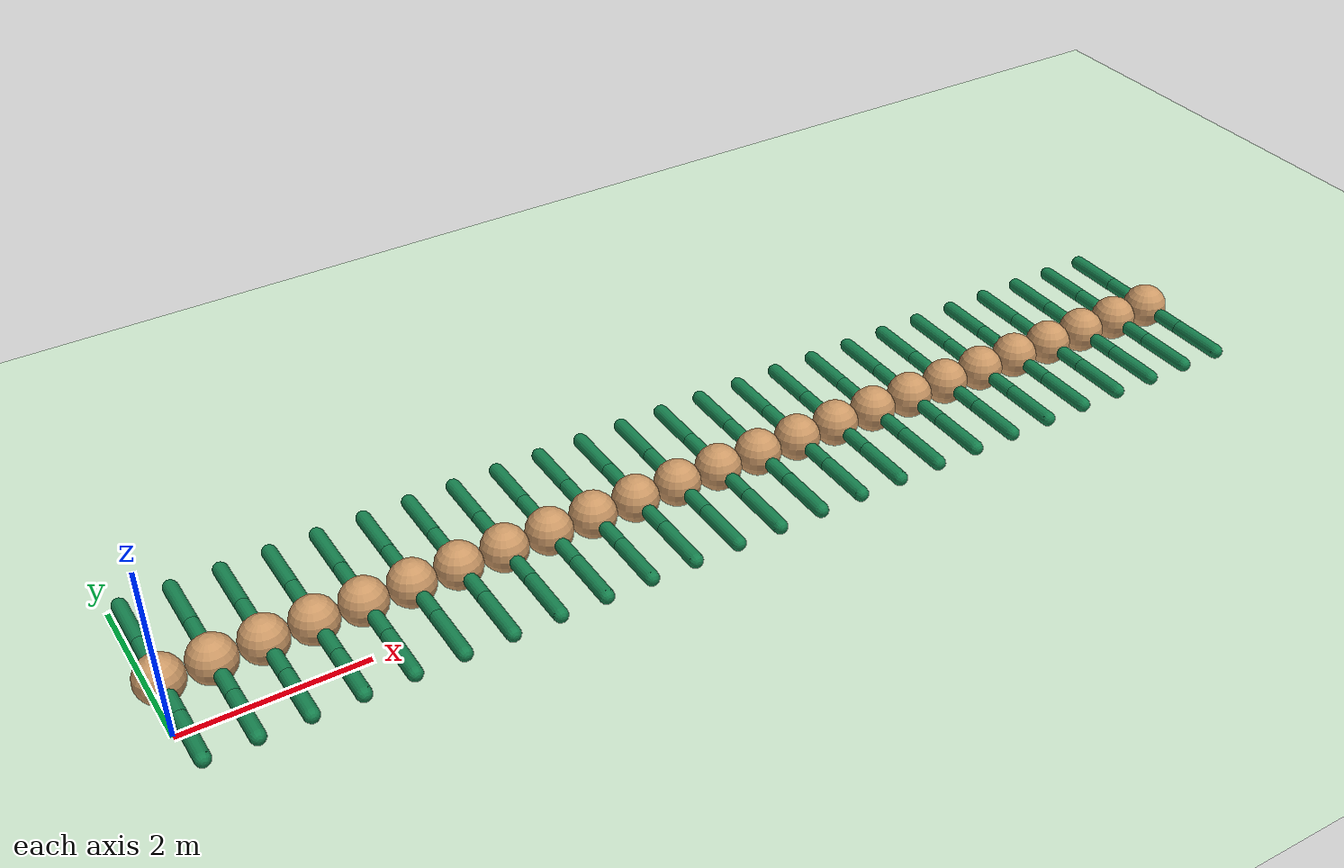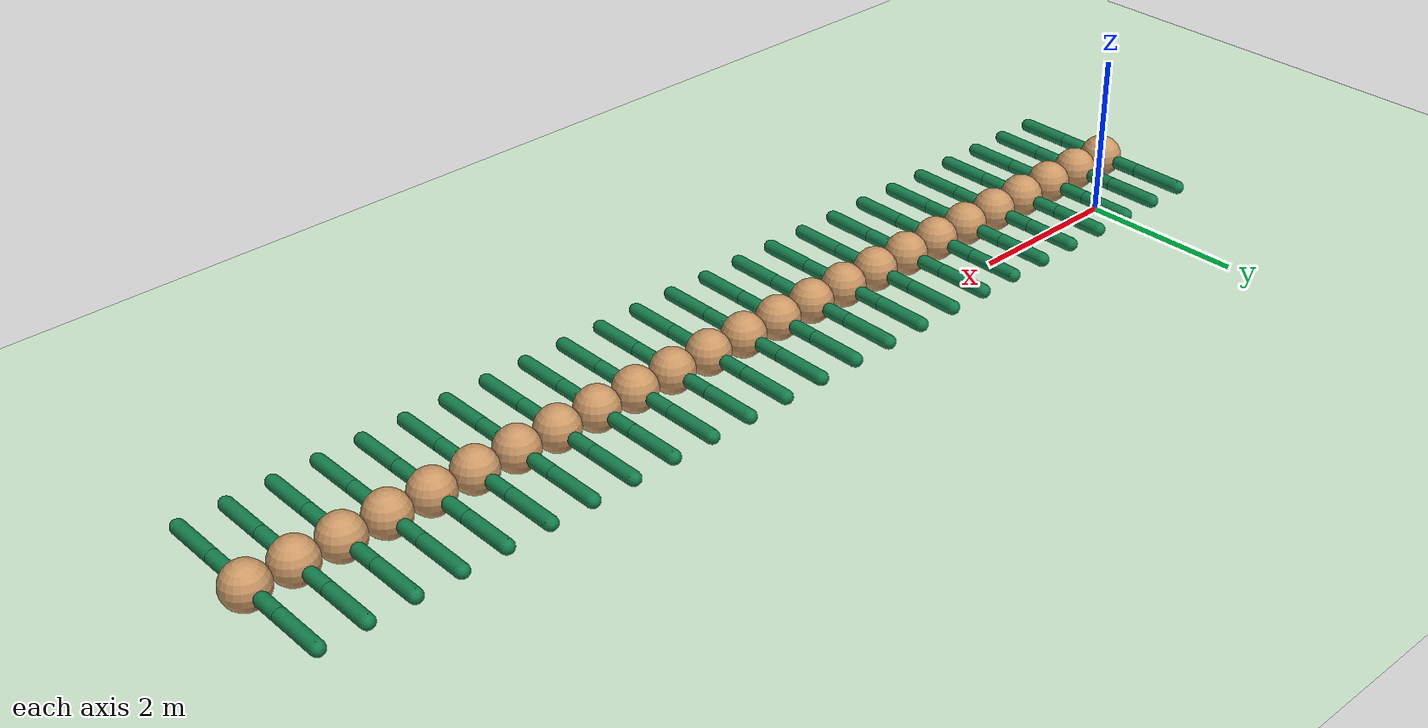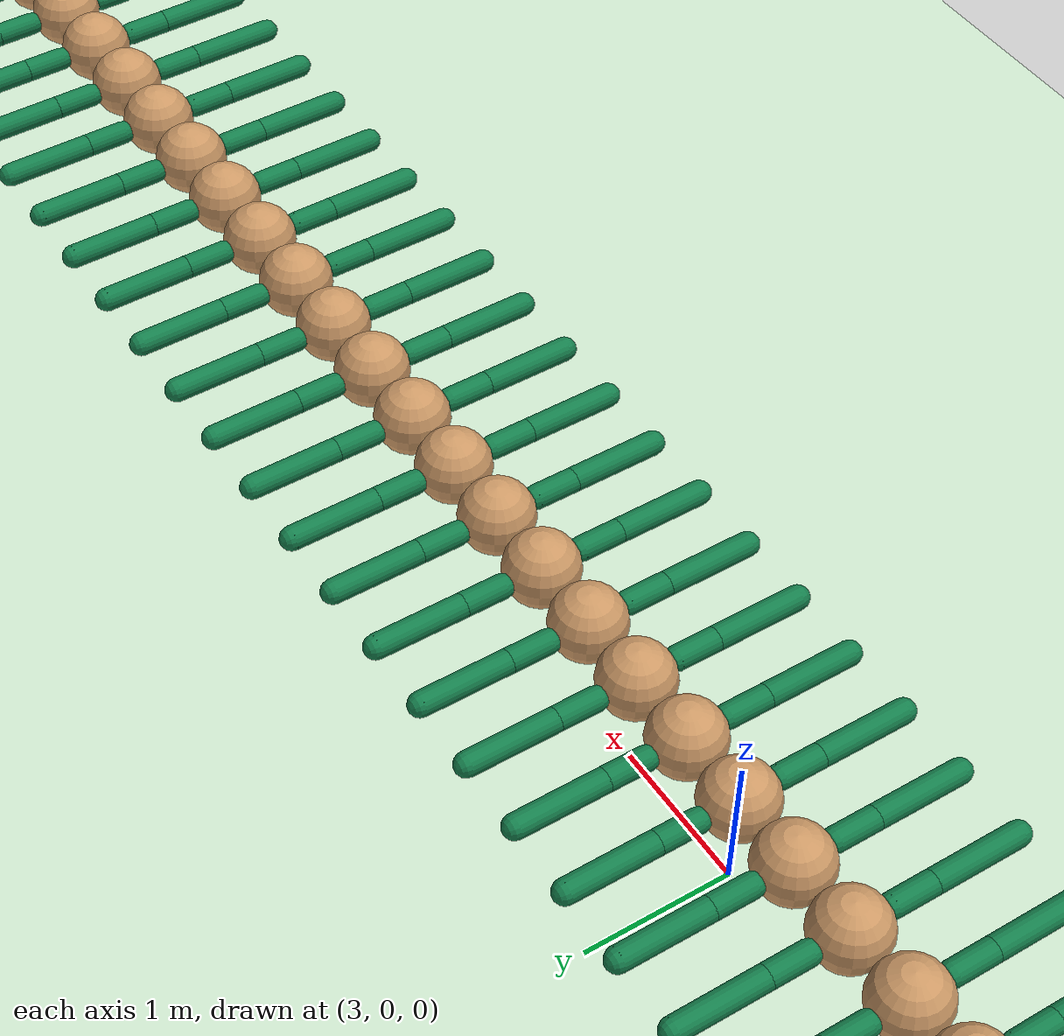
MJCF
<mujoco model="centipede">
  <compiler angle="degree" coordinate="local" inertiafromgeom="true"/>

  <option integrator="RK4" timestep="0.01"/>

  <default>
    <joint armature="1" damping="1" limited="true"/>
    <geom conaffinity="0" condim="3" density="25.0" friction="1.5 0.1 0.1" margin="0.01" rgba="0.8 0.6 0.4 1"/>
  </default>

  <asset>
    <texture builtin="gradient" height="100" rgb1="1 1 1" rgb2="0 0 0" type="skybox" width="100"/>
    <texture builtin="flat" height="1278" mark="cross" markrgb="1 1 1" name="texgeom" random="0.01" rgb1="0.8 0.6 0.4" rgb2="0.8 0.6 0.4" type="cube" width="127"/>
    <texture builtin="checker" height="100" name="texplane" rgb1="0 0 0" rgb2="0.8 0.8 0.8" type="2d" width="100"/>
    <material name="MatPlane" reflectance="0.5" shininess="1" specular="1" texrepeat="60 60" texture="texplane"/>
    <material name="geom" texture="texgeom" texuniform="true"/>
  </asset>

  <worldbody>
    <light cutoff="100" diffuse="1 1 1" dir="-0 0 -1.3" directional="true" exponent="1" pos="0 0 1.3" specular=".1 .1 .1"/>
    <geom conaffinity="1" condim="3" material="MatPlane" name="floor" pos="0 0 0" rgba="0.8 0.9 0.8 1" size="40 40 40" type="plane"/>
    <body name="torso_0" pos="0 0 0.75">
      <geom name="torsoGeom_0" pos="0 0 0" size="0.25" type="sphere" density="100"/>
      <joint armature="0" damping="0" limited="false" margin="0.01" name="root" pos="0 0 0" type="free"/>

      <body name="legbody_0" pos="0.0 -0.28 0">
        <joint axis="0 0 1" name="lefthip_0" pos="0.0 0.0 0.0" range="-40 40" type="hinge"/>
        <geom fromto="0.0 0.0 0.0 0.0 -0.28 0.0" name="legGeom_0" size="0.08" type="capsule" rgba=".08 .5 .3 1"/>
        <body pos="0 -0.28 0" name="frontFoot_0">
          <joint axis="1 0 0" name="ankle_0" pos="0.0 0.0 0.0" range="30 100" type="hinge"/>
          <geom fromto="0.0 0.0 0.0 0 -0.6 0.0" name="ankleGeom_0" size="0.08" type="capsule" rgba=".08 .5 .3 1"/>
        </body>
      </body>

      <body name="legbody_1" pos="0.0 0.28 0">
        <joint axis="0 0 1" name="righthip_1" pos="0.0 0.0 0.0" range="-40 40" type="hinge"/>
        <geom fromto="0.0 0.0 0.0 0.0 0.28 0.0" name="legGeom_1" size="0.08" type="capsule" rgba=".08 .5 .3 1"/>
        <body pos="0 0.28 0" name="frontFoot_1">
          <joint axis="-1 0 0" name="ankle_1" pos="0.0 0.0 0.0" range="30 100" type="hinge"/>
          <geom fromto="0.0 0.0 0.0 0 0.6 0.0" name="ankleGeom_1" size="0.08" type="capsule" rgba=".08 .5 .3 1"/>
        </body>
      </body>

      <body name="torso_1" pos="0.50 0 0">
        <geom name="torsoGeom_1" pos="0 0 0" size="0.25" type="sphere" density="100"/>
        <joint axis="0 0 1" name="body_1" pos="-0.25 0.0 0.0" range="-20 20" type="hinge"/>
        <joint axis="0 1 0" name="bodyupdown_1" pos="-0.25 0.0 0.0" range="-10 30" type="hinge"/>

        <body name="legbody_2" pos="0.0 -0.28 0">
          <joint axis="0 0 1" name="lefthip_2" pos="0.0 0.0 0.0" range="-40 40" type="hinge"/>
          <geom fromto="0.0 0.0 0.0 0.0 -0.28 0.0" name="legGeom_2" size="0.08" type="capsule" rgba=".08 .5 .3 1"/>
          <body pos="0 -0.28 0" name="frontFoot_2">
            <joint axis="1 0 0" name="ankle_2" pos="0.0 0.0 0.0" range="30 100" type="hinge"/>
            <geom fromto="0.0 0.0 0.0 0 -0.6 0.0" name="ankleGeom_2" size="0.08" type="capsule" rgba=".08 .5 .3 1"/>
          </body>
        </body>

        <body name="legbody_3" pos="0.0 0.28 0">
          <joint axis="0 0 1" name="righthip_3" pos="0.0 0.0 0.0" range="-40 40" type="hinge"/>
          <geom fromto="0.0 0.0 0.0 0.0 0.28 0.0" name="legGeom_3" size="0.08" type="capsule" rgba=".08 .5 .3 1"/>
          <body pos="0 0.28 0" name="frontFoot_3">
            <joint axis="-1 0 0" name="ankle_3" pos="0.0 0.0 0.0" range="30 100" type="hinge"/>
            <geom fromto="0.0 0.0 0.0 0 0.6 0.0" name="ankleGeom_3" size="0.08" type="capsule" rgba=".08 .5 .3 1"/>
          </body>
        </body>

        <body name="torso_2" pos="0.50 0 0">
          <geom name="torsoGeom_2" pos="0 0 0" size="0.25" type="sphere" density="100"/>
          <joint axis="0 0 1" name="body_2" pos="-0.25 0.0 0.0" range="-20 20" type="hinge"/>
          <joint axis="0 1 0" name="bodyupdown_2" pos="-0.25 0.0 0.0" range="-10 30" type="hinge"/>

          <body name="legbody_4" pos="0.0 -0.28 0">
            <joint axis="0 0 1" name="lefthip_4" pos="0.0 0.0 0.0" range="-40 40" type="hinge"/>
            <geom fromto="0.0 0.0 0.0 0.0 -0.28 0.0" name="legGeom_4" size="0.08" type="capsule" rgba=".08 .5 .3 1"/>
            <body pos="0 -0.28 0" name="frontFoot_4">
              <joint axis="1 0 0" name="ankle_4" pos="0.0 0.0 0.0" range="30 100" type="hinge"/>
              <geom fromto="0.0 0.0 0.0 0 -0.6 0.0" name="ankleGeom_4" size="0.08" type="capsule" rgba=".08 .5 .3 1"/>
            </body>
          </body>

          <body name="legbody_5" pos="0.0 0.28 0">
            <joint axis="0 0 1" name="righthip_5" pos="0.0 0.0 0.0" range="-40 40" type="hinge"/>
            <geom fromto="0.0 0.0 0.0 0.0 0.28 0.0" name="legGeom_5" size="0.08" type="capsule" rgba=".08 .5 .3 1"/>
            <body pos="0 0.28 0" name="frontFoot_5">
              <joint axis="-1 0 0" name="ankle_5" pos="0.0 0.0 0.0" range="30 100" type="hinge"/>
              <geom fromto="0.0 0.0 0.0 0 0.6 0.0" name="ankleGeom_5" size="0.08" type="capsule" rgba=".08 .5 .3 1"/>
            </body>
          </body>

          <body name="torso_3" pos="0.50 0 0">
            <geom name="torsoGeom_3" pos="0 0 0" size="0.25" type="sphere" density="100"/>
            <joint axis="0 0 1" name="body_3" pos="-0.25 0.0 0.0" range="-20 20" type="hinge"/>
            <joint axis="0 1 0" name="bodyupdown_3" pos="-0.25 0.0 0.0" range="-10 30" type="hinge"/>

            <body name="legbody_6" pos="0.0 -0.28 0">
              <joint axis="0 0 1" name="lefthip_6" pos="0.0 0.0 0.0" range="-40 40" type="hinge"/>
              <geom fromto="0.0 0.0 0.0 0.0 -0.28 0.0" name="legGeom_6" size="0.08" type="capsule" rgba=".08 .5 .3 1"/>
              <body pos="0 -0.28 0" name="frontFoot_6">
                <joint axis="1 0 0" name="ankle_6" pos="0.0 0.0 0.0" range="30 100" type="hinge"/>
                <geom fromto="0.0 0.0 0.0 0 -0.6 0.0" name="ankleGeom_6" size="0.08" type="capsule" rgba=".08 .5 .3 1"/>
              </body>
            </body>

            <body name="legbody_7" pos="0.0 0.28 0">
              <joint axis="0 0 1" name="righthip_7" pos="0.0 0.0 0.0" range="-40 40" type="hinge"/>
              <geom fromto="0.0 0.0 0.0 0.0 0.28 0.0" name="legGeom_7" size="0.08" type="capsule" rgba=".08 .5 .3 1"/>
              <body pos="0 0.28 0" name="frontFoot_7">
                <joint axis="-1 0 0" name="ankle_7" pos="0.0 0.0 0.0" range="30 100" type="hinge"/>
                <geom fromto="0.0 0.0 0.0 0 0.6 0.0" name="ankleGeom_7" size="0.08" type="capsule" rgba=".08 .5 .3 1"/>
              </body>
            </body>

            <body name="torso_4" pos="0.50 0 0">
              <geom name="torsoGeom_4" pos="0 0 0" size="0.25" type="sphere" density="100"/>
              <joint axis="0 0 1" name="body_4" pos="-0.25 0.0 0.0" range="-20 20" type="hinge"/>
              <joint axis="0 1 0" name="bodyupdown_4" pos="-0.25 0.0 0.0" range="-10 30" type="hinge"/>

              <body name="legbody_8" pos="0.0 -0.28 0">
                <joint axis="0 0 1" name="lefthip_8" pos="0.0 0.0 0.0" range="-40 40" type="hinge"/>
                <geom fromto="0.0 0.0 0.0 0.0 -0.28 0.0" name="legGeom_8" size="0.08" type="capsule" rgba=".08 .5 .3 1"/>
                <body pos="0 -0.28 0" name="frontFoot_8">
                  <joint axis="1 0 0" name="ankle_8" pos="0.0 0.0 0.0" range="30 100" type="hinge"/>
                  <geom fromto="0.0 0.0 0.0 0 -0.6 0.0" name="ankleGeom_8" size="0.08" type="capsule" rgba=".08 .5 .3 1"/>
                </body>
              </body>

              <body name="legbody_9" pos="0.0 0.28 0">
                <joint axis="0 0 1" name="righthip_9" pos="0.0 0.0 0.0" range="-40 40" type="hinge"/>
                <geom fromto="0.0 0.0 0.0 0.0 0.28 0.0" name="legGeom_9" size="0.08" type="capsule" rgba=".08 .5 .3 1"/>
                <body pos="0 0.28 0" name="frontFoot_9">
                  <joint axis="-1 0 0" name="ankle_9" pos="0.0 0.0 0.0" range="30 100" type="hinge"/>
                  <geom fromto="0.0 0.0 0.0 0 0.6 0.0" name="ankleGeom_9" size="0.08" type="capsule" rgba=".08 .5 .3 1"/>
                </body>
              </body>

              <body name="torso_5" pos="0.50 0 0">
                <geom name="torsoGeom_5" pos="0 0 0" size="0.25" type="sphere" density="100"/>
                <joint axis="0 0 1" name="body_5" pos="-0.25 0.0 0.0" range="-20 20" type="hinge"/>
                <joint axis="0 1 0" name="bodyupdown_5" pos="-0.25 0.0 0.0" range="-10 30" type="hinge"/>

                <body name="legbody_10" pos="0.0 -0.28 0">
                  <joint axis="0 0 1" name="lefthip_10" pos="0.0 0.0 0.0" range="-40 40" type="hinge"/>
                  <geom fromto="0.0 0.0 0.0 0.0 -0.28 0.0" name="legGeom_10" size="0.08" type="capsule" rgba=".08 .5 .3 1"/>
                  <body pos="0 -0.28 0" name="frontFoot_10">
                    <joint axis="1 0 0" name="ankle_10" pos="0.0 0.0 0.0" range="30 100" type="hinge"/>
                    <geom fromto="0.0 0.0 0.0 0 -0.6 0.0" name="ankleGeom_10" size="0.08" type="capsule" rgba=".08 .5 .3 1"/>
                  </body>
                </body>

                <body name="legbody_11" pos="0.0 0.28 0">
                  <joint axis="0 0 1" name="righthip_11" pos="0.0 0.0 0.0" range="-40 40" type="hinge"/>
                  <geom fromto="0.0 0.0 0.0 0.0 0.28 0.0" name="legGeom_11" size="0.08" type="capsule" rgba=".08 .5 .3 1"/>
                  <body pos="0 0.28 0" name="frontFoot_11">
                    <joint axis="-1 0 0" name="ankle_11" pos="0.0 0.0 0.0" range="30 100" type="hinge"/>
                    <geom fromto="0.0 0.0 0.0 0 0.6 0.0" name="ankleGeom_11" size="0.08" type="capsule" rgba=".08 .5 .3 1"/>
                  </body>
                </body>

                <body name="torso_6" pos="0.50 0 0">
                  <geom name="torsoGeom_6" pos="0 0 0" size="0.25" type="sphere" density="100"/>
                  <joint axis="0 0 1" name="body_6" pos="-0.25 0.0 0.0" range="-20 20" type="hinge"/>
                  <joint axis="0 1 0" name="bodyupdown_6" pos="-0.25 0.0 0.0" range="-10 30" type="hinge"/>

                  <body name="legbody_12" pos="0.0 -0.28 0">
                    <joint axis="0 0 1" name="lefthip_12" pos="0.0 0.0 0.0" range="-40 40" type="hinge"/>
                    <geom fromto="0.0 0.0 0.0 0.0 -0.28 0.0" name="legGeom_12" size="0.08" type="capsule" rgba=".08 .5 .3 1"/>
                    <body pos="0 -0.28 0" name="frontFoot_12">
                      <joint axis="1 0 0" name="ankle_12" pos="0.0 0.0 0.0" range="30 100" type="hinge"/>
                      <geom fromto="0.0 0.0 0.0 0 -0.6 0.0" name="ankleGeom_12" size="0.08" type="capsule" rgba=".08 .5 .3 1"/>
                    </body>
                  </body>

                  <body name="legbody_13" pos="0.0 0.28 0">
                    <joint axis="0 0 1" name="righthip_13" pos="0.0 0.0 0.0" range="-40 40" type="hinge"/>
                    <geom fromto="0.0 0.0 0.0 0.0 0.28 0.0" name="legGeom_13" size="0.08" type="capsule" rgba=".08 .5 .3 1"/>
                    <body pos="0 0.28 0" name="frontFoot_13">
                      <joint axis="-1 0 0" name="ankle_13" pos="0.0 0.0 0.0" range="30 100" type="hinge"/>
                      <geom fromto="0.0 0.0 0.0 0 0.6 0.0" name="ankleGeom_13" size="0.08" type="capsule" rgba=".08 .5 .3 1"/>
                    </body>
                  </body>

                  <body name="torso_7" pos="0.50 0 0">
                    <geom name="torsoGeom_7" pos="0 0 0" size="0.25" type="sphere" density="100"/>
                    <joint axis="0 0 1" name="body_7" pos="-0.25 0.0 0.0" range="-20 20" type="hinge"/>
                    <joint axis="0 1 0" name="bodyupdown_7" pos="-0.25 0.0 0.0" range="-10 30" type="hinge"/>

                    <body name="legbody_14" pos="0.0 -0.28 0">
                      <joint axis="0 0 1" name="lefthip_14" pos="0.0 0.0 0.0" range="-40 40" type="hinge"/>
                      <geom fromto="0.0 0.0 0.0 0.0 -0.28 0.0" name="legGeom_14" size="0.08" type="capsule" rgba=".08 .5 .3 1"/>
                      <body pos="0 -0.28 0" name="frontFoot_14">
                        <joint axis="1 0 0" name="ankle_14" pos="0.0 0.0 0.0" range="30 100" type="hinge"/>
                        <geom fromto="0.0 0.0 0.0 0 -0.6 0.0" name="ankleGeom_14" size="0.08" type="capsule" rgba=".08 .5 .3 1"/>
                      </body>
                    </body>

                    <body name="legbody_15" pos="0.0 0.28 0">
                      <joint axis="0 0 1" name="righthip_15" pos="0.0 0.0 0.0" range="-40 40" type="hinge"/>
                      <geom fromto="0.0 0.0 0.0 0.0 0.28 0.0" name="legGeom_15" size="0.08" type="capsule" rgba=".08 .5 .3 1"/>
                      <body pos="0 0.28 0" name="frontFoot_15">
                        <joint axis="-1 0 0" name="ankle_15" pos="0.0 0.0 0.0" range="30 100" type="hinge"/>
                        <geom fromto="0.0 0.0 0.0 0 0.6 0.0" name="ankleGeom_15" size="0.08" type="capsule" rgba=".08 .5 .3 1"/>
                      </body>
                    </body>

                    <body name="torso_8" pos="0.50 0 0">
                      <geom name="torsoGeom_8" pos="0 0 0" size="0.25" type="sphere" density="100"/>
                      <joint axis="0 0 1" name="body_8" pos="-0.25 0.0 0.0" range="-20 20" type="hinge"/>
                      <joint axis="0 1 0" name="bodyupdown_8" pos="-0.25 0.0 0.0" range="-10 30" type="hinge"/>

                      <body name="legbody_16" pos="0.0 -0.28 0">
                        <joint axis="0 0 1" name="lefthip_16" pos="0.0 0.0 0.0" range="-40 40" type="hinge"/>
                        <geom fromto="0.0 0.0 0.0 0.0 -0.28 0.0" name="legGeom_16" size="0.08" type="capsule" rgba=".08 .5 .3 1"/>
                        <body pos="0 -0.28 0" name="frontFoot_16">
                          <joint axis="1 0 0" name="ankle_16" pos="0.0 0.0 0.0" range="30 100" type="hinge"/>
                          <geom fromto="0.0 0.0 0.0 0 -0.6 0.0" name="ankleGeom_16" size="0.08" type="capsule" rgba=".08 .5 .3 1"/>
                        </body>
                      </body>

                      <body name="legbody_17" pos="0.0 0.28 0">
                        <joint axis="0 0 1" name="righthip_17" pos="0.0 0.0 0.0" range="-40 40" type="hinge"/>
                        <geom fromto="0.0 0.0 0.0 0.0 0.28 0.0" name="legGeom_17" size="0.08" type="capsule" rgba=".08 .5 .3 1"/>
                        <body pos="0 0.28 0" name="frontFoot_17">
                          <joint axis="-1 0 0" name="ankle_17" pos="0.0 0.0 0.0" range="30 100" type="hinge"/>
                          <geom fromto="0.0 0.0 0.0 0 0.6 0.0" name="ankleGeom_17" size="0.08" type="capsule" rgba=".08 .5 .3 1"/>
                        </body>
                      </body>

                      <body name="torso_9" pos="0.50 0 0">
                        <geom name="torsoGeom_9" pos="0 0 0" size="0.25" type="sphere" density="100"/>
                        <joint axis="0 0 1" name="body_9" pos="-0.25 0.0 0.0" range="-20 20" type="hinge"/>
                        <joint axis="0 1 0" name="bodyupdown_9" pos="-0.25 0.0 0.0" range="-10 30" type="hinge"/>

                        <body name="legbody_18" pos="0.0 -0.28 0">
                          <joint axis="0 0 1" name="lefthip_18" pos="0.0 0.0 0.0" range="-40 40" type="hinge"/>
                          <geom fromto="0.0 0.0 0.0 0.0 -0.28 0.0" name="legGeom_18" size="0.08" type="capsule" rgba=".08 .5 .3 1"/>
                          <body pos="0 -0.28 0" name="frontFoot_18">
                            <joint axis="1 0 0" name="ankle_18" pos="0.0 0.0 0.0" range="30 100" type="hinge"/>
                            <geom fromto="0.0 0.0 0.0 0 -0.6 0.0" name="ankleGeom_18" size="0.08" type="capsule" rgba=".08 .5 .3 1"/>
                          </body>
                        </body>

                        <body name="legbody_19" pos="0.0 0.28 0">
                          <joint axis="0 0 1" name="righthip_19" pos="0.0 0.0 0.0" range="-40 40" type="hinge"/>
                          <geom fromto="0.0 0.0 0.0 0.0 0.28 0.0" name="legGeom_19" size="0.08" type="capsule" rgba=".08 .5 .3 1"/>
                          <body pos="0 0.28 0" name="frontFoot_19">
                            <joint axis="-1 0 0" name="ankle_19" pos="0.0 0.0 0.0" range="30 100" type="hinge"/>
                            <geom fromto="0.0 0.0 0.0 0 0.6 0.0" name="ankleGeom_19" size="0.08" type="capsule" rgba=".08 .5 .3 1"/>
                          </body>
                        </body>

                        <body name="torso_10" pos="0.50 0 0">
                          <geom name="torsoGeom_10" pos="0 0 0" size="0.25" type="sphere" density="100"/>
                          <joint axis="0 0 1" name="body_10" pos="-0.25 0.0 0.0" range="-20 20" type="hinge"/>
                          <joint axis="0 1 0" name="bodyupdown_10" pos="-0.25 0.0 0.0" range="-10 30" type="hinge"/>

                          <body name="legbody_20" pos="0.0 -0.28 0">
                            <joint axis="0 0 1" name="lefthip_20" pos="0.0 0.0 0.0" range="-40 40" type="hinge"/>
                            <geom fromto="0.0 0.0 0.0 0.0 -0.28 0.0" name="legGeom_20" size="0.08" type="capsule" rgba=".08 .5 .3 1"/>
                            <body pos="0 -0.28 0" name="frontFoot_20">
                              <joint axis="1 0 0" name="ankle_20" pos="0.0 0.0 0.0" range="30 100" type="hinge"/>
                              <geom fromto="0.0 0.0 0.0 0 -0.6 0.0" name="ankleGeom_20" size="0.08" type="capsule" rgba=".08 .5 .3 1"/>
                            </body>
                          </body>

                          <body name="legbody_21" pos="0.0 0.28 0">
                            <joint axis="0 0 1" name="righthip_21" pos="0.0 0.0 0.0" range="-40 40" type="hinge"/>
                            <geom fromto="0.0 0.0 0.0 0.0 0.28 0.0" name="legGeom_21" size="0.08" type="capsule" rgba=".08 .5 .3 1"/>
                            <body pos="0 0.28 0" name="frontFoot_21">
                              <joint axis="-1 0 0" name="ankle_21" pos="0.0 0.0 0.0" range="30 100" type="hinge"/>
                              <geom fromto="0.0 0.0 0.0 0 0.6 0.0" name="ankleGeom_21" size="0.08" type="capsule" rgba=".08 .5 .3 1"/>
                            </body>
                          </body>

                          <body name="torso_11" pos="0.50 0 0">
                            <geom name="torsoGeom_11" pos="0 0 0" size="0.25" type="sphere" density="100"/>
                            <joint axis="0 0 1" name="body_11" pos="-0.25 0.0 0.0" range="-20 20" type="hinge"/>
                            <joint axis="0 1 0" name="bodyupdown_11" pos="-0.25 0.0 0.0" range="-10 30" type="hinge"/>

                            <body name="legbody_22" pos="0.0 -0.28 0">
                              <joint axis="0 0 1" name="lefthip_22" pos="0.0 0.0 0.0" range="-40 40" type="hinge"/>
                              <geom fromto="0.0 0.0 0.0 0.0 -0.28 0.0" name="legGeom_22" size="0.08" type="capsule" rgba=".08 .5 .3 1"/>
                              <body pos="0 -0.28 0" name="frontFoot_22">
                                <joint axis="1 0 0" name="ankle_22" pos="0.0 0.0 0.0" range="30 100" type="hinge"/>
                                <geom fromto="0.0 0.0 0.0 0 -0.6 0.0" name="ankleGeom_22" size="0.08" type="capsule" rgba=".08 .5 .3 1"/>
                              </body>
                            </body>

                            <body name="legbody_23" pos="0.0 0.28 0">
                              <joint axis="0 0 1" name="righthip_23" pos="0.0 0.0 0.0" range="-40 40" type="hinge"/>
                              <geom fromto="0.0 0.0 0.0 0.0 0.28 0.0" name="legGeom_23" size="0.08" type="capsule" rgba=".08 .5 .3 1"/>
                              <body pos="0 0.28 0" name="frontFoot_23">
                                <joint axis="-1 0 0" name="ankle_23" pos="0.0 0.0 0.0" range="30 100" type="hinge"/>
                                <geom fromto="0.0 0.0 0.0 0 0.6 0.0" name="ankleGeom_23" size="0.08" type="capsule" rgba=".08 .5 .3 1"/>
                              </body>
                            </body>

                            <body name="torso_12" pos="0.50 0 0">
                              <geom name="torsoGeom_12" pos="0 0 0" size="0.25" type="sphere" density="100"/>
                              <joint axis="0 0 1" name="body_12" pos="-0.25 0.0 0.0" range="-20 20" type="hinge"/>
                              <joint axis="0 1 0" name="bodyupdown_12" pos="-0.25 0.0 0.0" range="-10 30" type="hinge"/>

                              <body name="legbody_24" pos="0.0 -0.28 0">
                                <joint axis="0 0 1" name="lefthip_24" pos="0.0 0.0 0.0" range="-40 40" type="hinge"/>
                                <geom fromto="0.0 0.0 0.0 0.0 -0.28 0.0" name="legGeom_24" size="0.08" type="capsule" rgba=".08 .5 .3 1"/>
                                <body pos="0 -0.28 0" name="frontFoot_24">
                                  <joint axis="1 0 0" name="ankle_24" pos="0.0 0.0 0.0" range="30 100" type="hinge"/>
                                  <geom fromto="0.0 0.0 0.0 0 -0.6 0.0" name="ankleGeom_24" size="0.08" type="capsule" rgba=".08 .5 .3 1"/>
                                </body>
                              </body>

                              <body name="legbody_25" pos="0.0 0.28 0">
                                <joint axis="0 0 1" name="righthip_25" pos="0.0 0.0 0.0" range="-40 40" type="hinge"/>
                                <geom fromto="0.0 0.0 0.0 0.0 0.28 0.0" name="legGeom_25" size="0.08" type="capsule" rgba=".08 .5 .3 1"/>
                                <body pos="0 0.28 0" name="frontFoot_25">
                                  <joint axis="-1 0 0" name="ankle_25" pos="0.0 0.0 0.0" range="30 100" type="hinge"/>
                                  <geom fromto="0.0 0.0 0.0 0 0.6 0.0" name="ankleGeom_25" size="0.08" type="capsule" rgba=".08 .5 .3 1"/>
                                </body>
                              </body>

                              <body name="torso_13" pos="0.50 0 0">
                                <geom name="torsoGeom_13" pos="0 0 0" size="0.25" type="sphere" density="100"/>
                                <joint axis="0 0 1" name="body_13" pos="-0.25 0.0 0.0" range="-20 20" type="hinge"/>
                                <joint axis="0 1 0" name="bodyupdown_13" pos="-0.25 0.0 0.0" range="-10 30" type="hinge"/>

                                <body name="legbody_26" pos="0.0 -0.28 0">
                                  <joint axis="0 0 1" name="lefthip_26" pos="0.0 0.0 0.0" range="-40 40" type="hinge"/>
                                  <geom fromto="0.0 0.0 0.0 0.0 -0.28 0.0" name="legGeom_26" size="0.08" type="capsule" rgba=".08 .5 .3 1"/>
                                  <body pos="0 -0.28 0" name="frontFoot_26">
                                    <joint axis="1 0 0" name="ankle_26" pos="0.0 0.0 0.0" range="30 100" type="hinge"/>
                                    <geom fromto="0.0 0.0 0.0 0 -0.6 0.0" name="ankleGeom_26" size="0.08" type="capsule" rgba=".08 .5 .3 1"/>
                                  </body>
                                </body>

                                <body name="legbody_27" pos="0.0 0.28 0">
                                  <joint axis="0 0 1" name="righthip_27" pos="0.0 0.0 0.0" range="-40 40" type="hinge"/>
                                  <geom fromto="0.0 0.0 0.0 0.0 0.28 0.0" name="legGeom_27" size="0.08" type="capsule" rgba=".08 .5 .3 1"/>
                                  <body pos="0 0.28 0" name="frontFoot_27">
                                    <joint axis="-1 0 0" name="ankle_27" pos="0.0 0.0 0.0" range="30 100" type="hinge"/>
                                    <geom fromto="0.0 0.0 0.0 0 0.6 0.0" name="ankleGeom_27" size="0.08" type="capsule" rgba=".08 .5 .3 1"/>
                                  </body>
                                </body>

                                <body name="torso_14" pos="0.50 0 0">
                                  <geom name="torsoGeom_14" pos="0 0 0" size="0.25" type="sphere" density="100"/>
                                  <joint axis="0 0 1" name="body_14" pos="-0.25 0.0 0.0" range="-20 20" type="hinge"/>
                                  <joint axis="0 1 0" name="bodyupdown_14" pos="-0.25 0.0 0.0" range="-10 30" type="hinge"/>

                                  <body name="legbody_28" pos="0.0 -0.28 0">
                                    <joint axis="0 0 1" name="lefthip_28" pos="0.0 0.0 0.0" range="-40 40" type="hinge"/>
                                    <geom fromto="0.0 0.0 0.0 0.0 -0.28 0.0" name="legGeom_28" size="0.08" type="capsule" rgba=".08 .5 .3 1"/>
                                    <body pos="0 -0.28 0" name="frontFoot_28">
                                      <joint axis="1 0 0" name="ankle_28" pos="0.0 0.0 0.0" range="30 100" type="hinge"/>
                                      <geom fromto="0.0 0.0 0.0 0 -0.6 0.0" name="ankleGeom_28" size="0.08" type="capsule" rgba=".08 .5 .3 1"/>
                                    </body>
                                  </body>

                                  <body name="legbody_29" pos="0.0 0.28 0">
                                    <joint axis="0 0 1" name="righthip_29" pos="0.0 0.0 0.0" range="-40 40" type="hinge"/>
                                    <geom fromto="0.0 0.0 0.0 0.0 0.28 0.0" name="legGeom_29" size="0.08" type="capsule" rgba=".08 .5 .3 1"/>
                                    <body pos="0 0.28 0" name="frontFoot_29">
                                      <joint axis="-1 0 0" name="ankle_29" pos="0.0 0.0 0.0" range="30 100" type="hinge"/>
                                      <geom fromto="0.0 0.0 0.0 0 0.6 0.0" name="ankleGeom_29" size="0.08" type="capsule" rgba=".08 .5 .3 1"/>
                                    </body>
                                  </body>

                                  <body name="torso_15" pos="0.50 0 0">
                                    <geom name="torsoGeom_15" pos="0 0 0" size="0.25" type="sphere" density="100"/>
                                    <joint axis="0 0 1" name="body_15" pos="-0.25 0.0 0.0" range="-20 20" type="hinge"/>
                                    <joint axis="0 1 0" name="bodyupdown_15" pos="-0.25 0.0 0.0" range="-10 30" type="hinge"/>

                                    <body name="legbody_30" pos="0.0 -0.28 0">
                                      <joint axis="0 0 1" name="lefthip_30" pos="0.0 0.0 0.0" range="-40 40" type="hinge"/>
                                      <geom fromto="0.0 0.0 0.0 0.0 -0.28 0.0" name="legGeom_30" size="0.08" type="capsule" rgba=".08 .5 .3 1"/>
                                      <body pos="0 -0.28 0" name="frontFoot_30">
                                        <joint axis="1 0 0" name="ankle_30" pos="0.0 0.0 0.0" range="30 100" type="hinge"/>
                                        <geom fromto="0.0 0.0 0.0 0 -0.6 0.0" name="ankleGeom_30" size="0.08" type="capsule" rgba=".08 .5 .3 1"/>
                                      </body>
                                    </body>

                                    <body name="legbody_31" pos="0.0 0.28 0">
                                      <joint axis="0 0 1" name="righthip_31" pos="0.0 0.0 0.0" range="-40 40" type="hinge"/>
                                      <geom fromto="0.0 0.0 0.0 0.0 0.28 0.0" name="legGeom_31" size="0.08" type="capsule" rgba=".08 .5 .3 1"/>
                                      <body pos="0 0.28 0" name="frontFoot_31">
                                        <joint axis="-1 0 0" name="ankle_31" pos="0.0 0.0 0.0" range="30 100" type="hinge"/>
                                        <geom fromto="0.0 0.0 0.0 0 0.6 0.0" name="ankleGeom_31" size="0.08" type="capsule" rgba=".08 .5 .3 1"/>
                                      </body>
                                    </body>

                                    <body name="torso_16" pos="0.50 0 0">
                                      <geom name="torsoGeom_16" pos="0 0 0" size="0.25" type="sphere" density="100"/>
                                      <joint axis="0 0 1" name="body_16" pos="-0.25 0.0 0.0" range="-20 20" type="hinge"/>
                                      <joint axis="0 1 0" name="bodyupdown_16" pos="-0.25 0.0 0.0" range="-10 30" type="hinge"/>

                                      <body name="legbody_32" pos="0.0 -0.28 0">
                                        <joint axis="0 0 1" name="lefthip_32" pos="0.0 0.0 0.0" range="-40 40" type="hinge"/>
                                        <geom fromto="0.0 0.0 0.0 0.0 -0.28 0.0" name="legGeom_32" size="0.08" type="capsule" rgba=".08 .5 .3 1"/>
                                        <body pos="0 -0.28 0" name="frontFoot_32">
                                          <joint axis="1 0 0" name="ankle_32" pos="0.0 0.0 0.0" range="30 100" type="hinge"/>
                                          <geom fromto="0.0 0.0 0.0 0 -0.6 0.0" name="ankleGeom_32" size="0.08" type="capsule" rgba=".08 .5 .3 1"/>
                                        </body>
                                      </body>

                                      <body name="legbody_33" pos="0.0 0.28 0">
                                        <joint axis="0 0 1" name="righthip_33" pos="0.0 0.0 0.0" range="-40 40" type="hinge"/>
                                        <geom fromto="0.0 0.0 0.0 0.0 0.28 0.0" name="legGeom_33" size="0.08" type="capsule" rgba=".08 .5 .3 1"/>
                                        <body pos="0 0.28 0" name="frontFoot_33">
                                          <joint axis="-1 0 0" name="ankle_33" pos="0.0 0.0 0.0" range="30 100" type="hinge"/>
                                          <geom fromto="0.0 0.0 0.0 0 0.6 0.0" name="ankleGeom_33" size="0.08" type="capsule" rgba=".08 .5 .3 1"/>
                                        </body>
                                      </body>

                                      <body name="torso_17" pos="0.50 0 0">
                                        <geom name="torsoGeom_17" pos="0 0 0" size="0.25" type="sphere" density="100"/>
                                        <joint axis="0 0 1" name="body_17" pos="-0.25 0.0 0.0" range="-20 20" type="hinge"/>
                                        <joint axis="0 1 0" name="bodyupdown_17" pos="-0.25 0.0 0.0" range="-10 30" type="hinge"/>

                                        <body name="legbody_34" pos="0.0 -0.28 0">
                                          <joint axis="0 0 1" name="lefthip_34" pos="0.0 0.0 0.0" range="-40 40" type="hinge"/>
                                          <geom fromto="0.0 0.0 0.0 0.0 -0.28 0.0" name="legGeom_34" size="0.08" type="capsule" rgba=".08 .5 .3 1"/>
                                          <body pos="0 -0.28 0" name="frontFoot_34">
                                            <joint axis="1 0 0" name="ankle_34" pos="0.0 0.0 0.0" range="30 100" type="hinge"/>
                                            <geom fromto="0.0 0.0 0.0 0 -0.6 0.0" name="ankleGeom_34" size="0.08" type="capsule" rgba=".08 .5 .3 1"/>
                                          </body>
                                        </body>

                                        <body name="legbody_35" pos="0.0 0.28 0">
                                          <joint axis="0 0 1" name="righthip_35" pos="0.0 0.0 0.0" range="-40 40" type="hinge"/>
                                          <geom fromto="0.0 0.0 0.0 0.0 0.28 0.0" name="legGeom_35" size="0.08" type="capsule" rgba=".08 .5 .3 1"/>
                                          <body pos="0 0.28 0" name="frontFoot_35">
                                            <joint axis="-1 0 0" name="ankle_35" pos="0.0 0.0 0.0" range="30 100" type="hinge"/>
                                            <geom fromto="0.0 0.0 0.0 0 0.6 0.0" name="ankleGeom_35" size="0.08" type="capsule" rgba=".08 .5 .3 1"/>
                                          </body>
                                        </body>

                                        <body name="torso_18" pos="0.50 0 0">
                                          <geom name="torsoGeom_18" pos="0 0 0" size="0.25" type="sphere" density="100"/>
                                          <joint axis="0 0 1" name="body_18" pos="-0.25 0.0 0.0" range="-20 20" type="hinge"/>
                                          <joint axis="0 1 0" name="bodyupdown_18" pos="-0.25 0.0 0.0" range="-10 30" type="hinge"/>

                                          <body name="legbody_36" pos="0.0 -0.28 0">
                                            <joint axis="0 0 1" name="lefthip_36" pos="0.0 0.0 0.0" range="-40 40" type="hinge"/>
                                            <geom fromto="0.0 0.0 0.0 0.0 -0.28 0.0" name="legGeom_36" size="0.08" type="capsule" rgba=".08 .5 .3 1"/>
                                            <body pos="0 -0.28 0" name="frontFoot_36">
                                              <joint axis="1 0 0" name="ankle_36" pos="0.0 0.0 0.0" range="30 100" type="hinge"/>
                                              <geom fromto="0.0 0.0 0.0 0 -0.6 0.0" name="ankleGeom_36" size="0.08" type="capsule" rgba=".08 .5 .3 1"/>
                                            </body>
                                          </body>

                                          <body name="legbody_37" pos="0.0 0.28 0">
                                            <joint axis="0 0 1" name="righthip_37" pos="0.0 0.0 0.0" range="-40 40" type="hinge"/>
                                            <geom fromto="0.0 0.0 0.0 0.0 0.28 0.0" name="legGeom_37" size="0.08" type="capsule" rgba=".08 .5 .3 1"/>
                                            <body pos="0 0.28 0" name="frontFoot_37">
                                              <joint axis="-1 0 0" name="ankle_37" pos="0.0 0.0 0.0" range="30 100" type="hinge"/>
                                              <geom fromto="0.0 0.0 0.0 0 0.6 0.0" name="ankleGeom_37" size="0.08" type="capsule" rgba=".08 .5 .3 1"/>
                                            </body>
                                          </body>

                                          <body name="torso_19" pos="0.50 0 0">
                                            <geom name="torsoGeom_19" pos="0 0 0" size="0.25" type="sphere" density="100"/>
                                            <joint axis="0 0 1" name="body_19" pos="-0.25 0.0 0.0" range="-20 20" type="hinge"/>
                                            <joint axis="0 1 0" name="bodyupdown_19" pos="-0.25 0.0 0.0" range="-10 30" type="hinge"/>

                                            <body name="legbody_38" pos="0.0 -0.28 0">
                                              <joint axis="0 0 1" name="lefthip_38" pos="0.0 0.0 0.0" range="-40 40" type="hinge"/>
                                              <geom fromto="0.0 0.0 0.0 0.0 -0.28 0.0" name="legGeom_38" size="0.08" type="capsule" rgba=".08 .5 .3 1"/>
                                              <body pos="0 -0.28 0" name="frontFoot_38">
                                                <joint axis="1 0 0" name="ankle_38" pos="0.0 0.0 0.0" range="30 100" type="hinge"/>
                                                <geom fromto="0.0 0.0 0.0 0 -0.6 0.0" name="ankleGeom_38" size="0.08" type="capsule" rgba=".08 .5 .3 1"/>
                                              </body>
                                            </body>

                                            <body name="legbody_39" pos="0.0 0.28 0">
                                              <joint axis="0 0 1" name="righthip_39" pos="0.0 0.0 0.0" range="-40 40" type="hinge"/>
                                              <geom fromto="0.0 0.0 0.0 0.0 0.28 0.0" name="legGeom_39" size="0.08" type="capsule" rgba=".08 .5 .3 1"/>
                                              <body pos="0 0.28 0" name="frontFoot_39">
                                                <joint axis="-1 0 0" name="ankle_39" pos="0.0 0.0 0.0" range="30 100" type="hinge"/>
                                                <geom fromto="0.0 0.0 0.0 0 0.6 0.0" name="ankleGeom_39" size="0.08" type="capsule" rgba=".08 .5 .3 1"/>
                                              </body>
                                            </body>

                                            <body name="torso_20" pos="0.50 0 0">
                                              <geom name="torsoGeom_20" pos="0 0 0" size="0.25" type="sphere" density="100"/>
                                              <joint axis="0 0 1" name="body_20" pos="-0.25 0.0 0.0" range="-20 20" type="hinge"/>
                                              <joint axis="0 1 0" name="bodyupdown_20" pos="-0.25 0.0 0.0" range="-10 30" type="hinge"/>

                                              <body name="legbody_40" pos="0.0 -0.28 0">
                                                <joint axis="0 0 1" name="lefthip_40" pos="0.0 0.0 0.0" range="-40 40" type="hinge"/>
                                                <geom fromto="0.0 0.0 0.0 0.0 -0.28 0.0" name="legGeom_40" size="0.08" type="capsule" rgba=".08 .5 .3 1"/>
                                                <body pos="0 -0.28 0" name="frontFoot_40">
                                                  <joint axis="1 0 0" name="ankle_40" pos="0.0 0.0 0.0" range="30 100" type="hinge"/>
                                                  <geom fromto="0.0 0.0 0.0 0 -0.6 0.0" name="ankleGeom_40" size="0.08" type="capsule" rgba=".08 .5 .3 1"/>
                                                </body>
                                              </body>

                                              <body name="legbody_41" pos="0.0 0.28 0">
                                                <joint axis="0 0 1" name="righthip_41" pos="0.0 0.0 0.0" range="-40 40" type="hinge"/>
                                                <geom fromto="0.0 0.0 0.0 0.0 0.28 0.0" name="legGeom_41" size="0.08" type="capsule" rgba=".08 .5 .3 1"/>
                                                <body pos="0 0.28 0" name="frontFoot_41">
                                                  <joint axis="-1 0 0" name="ankle_41" pos="0.0 0.0 0.0" range="30 100" type="hinge"/>
                                                  <geom fromto="0.0 0.0 0.0 0 0.6 0.0" name="ankleGeom_41" size="0.08" type="capsule" rgba=".08 .5 .3 1"/>
                                                </body>
                                              </body>

                                              <body name="torso_21" pos="0.50 0 0">
                                                <geom name="torsoGeom_21" pos="0 0 0" size="0.25" type="sphere" density="100"/>
                                                <joint axis="0 0 1" name="body_21" pos="-0.25 0.0 0.0" range="-20 20" type="hinge"/>
                                                <joint axis="0 1 0" name="bodyupdown_21" pos="-0.25 0.0 0.0" range="-10 30" type="hinge"/>

                                                <body name="legbody_42" pos="0.0 -0.28 0">
                                                  <joint axis="0 0 1" name="lefthip_42" pos="0.0 0.0 0.0" range="-40 40" type="hinge"/>
                                                  <geom fromto="0.0 0.0 0.0 0.0 -0.28 0.0" name="legGeom_42" size="0.08" type="capsule" rgba=".08 .5 .3 1"/>
                                                  <body pos="0 -0.28 0" name="frontFoot_42">
                                                    <joint axis="1 0 0" name="ankle_42" pos="0.0 0.0 0.0" range="30 100" type="hinge"/>
                                                    <geom fromto="0.0 0.0 0.0 0 -0.6 0.0" name="ankleGeom_42" size="0.08" type="capsule" rgba=".08 .5 .3 1"/>
                                                  </body>
                                                </body>

                                                <body name="legbody_43" pos="0.0 0.28 0">
                                                  <joint axis="0 0 1" name="righthip_43" pos="0.0 0.0 0.0" range="-40 40" type="hinge"/>
                                                  <geom fromto="0.0 0.0 0.0 0.0 0.28 0.0" name="legGeom_43" size="0.08" type="capsule" rgba=".08 .5 .3 1"/>
                                                  <body pos="0 0.28 0" name="frontFoot_43">
                                                    <joint axis="-1 0 0" name="ankle_43" pos="0.0 0.0 0.0" range="30 100" type="hinge"/>
                                                    <geom fromto="0.0 0.0 0.0 0 0.6 0.0" name="ankleGeom_43" size="0.08" type="capsule" rgba=".08 .5 .3 1"/>
                                                  </body>
                                                </body>

                                                <body name="torso_22" pos="0.50 0 0">
                                                  <geom name="torsoGeom_22" pos="0 0 0" size="0.25" type="sphere" density="100"/>
                                                  <joint axis="0 0 1" name="body_22" pos="-0.25 0.0 0.0" range="-20 20" type="hinge"/>
                                                  <joint axis="0 1 0" name="bodyupdown_22" pos="-0.25 0.0 0.0" range="-10 30" type="hinge"/>

                                                  <body name="legbody_44" pos="0.0 -0.28 0">
                                                    <joint axis="0 0 1" name="lefthip_44" pos="0.0 0.0 0.0" range="-40 40" type="hinge"/>
                                                    <geom fromto="0.0 0.0 0.0 0.0 -0.28 0.0" name="legGeom_44" size="0.08" type="capsule" rgba=".08 .5 .3 1"/>
                                                    <body pos="0 -0.28 0" name="frontFoot_44">
                                                      <joint axis="1 0 0" name="ankle_44" pos="0.0 0.0 0.0" range="30 100" type="hinge"/>
                                                      <geom fromto="0.0 0.0 0.0 0 -0.6 0.0" name="ankleGeom_44" size="0.08" type="capsule" rgba=".08 .5 .3 1"/>
                                                    </body>
                                                  </body>

                                                  <body name="legbody_45" pos="0.0 0.28 0">
                                                    <joint axis="0 0 1" name="righthip_45" pos="0.0 0.0 0.0" range="-40 40" type="hinge"/>
                                                    <geom fromto="0.0 0.0 0.0 0.0 0.28 0.0" name="legGeom_45" size="0.08" type="capsule" rgba=".08 .5 .3 1"/>
                                                    <body pos="0 0.28 0" name="frontFoot_45">
                                                      <joint axis="-1 0 0" name="ankle_45" pos="0.0 0.0 0.0" range="30 100" type="hinge"/>
                                                      <geom fromto="0.0 0.0 0.0 0 0.6 0.0" name="ankleGeom_45" size="0.08" type="capsule" rgba=".08 .5 .3 1"/>
                                                    </body>
                                                  </body>

                                                  <body name="torso_23" pos="0.50 0 0">
                                                    <geom name="torsoGeom_23" pos="0 0 0" size="0.25" type="sphere" density="100"/>
                                                    <joint axis="0 0 1" name="body_23" pos="-0.25 0.0 0.0" range="-20 20" type="hinge"/>
                                                    <joint axis="0 1 0" name="bodyupdown_23" pos="-0.25 0.0 0.0" range="-10 30" type="hinge"/>

                                                    <body name="legbody_46" pos="0.0 -0.28 0">
                                                      <joint axis="0 0 1" name="lefthip_46" pos="0.0 0.0 0.0" range="-40 40" type="hinge"/>
                                                      <geom fromto="0.0 0.0 0.0 0.0 -0.28 0.0" name="legGeom_46" size="0.08" type="capsule" rgba=".08 .5 .3 1"/>
                                                      <body pos="0 -0.28 0" name="frontFoot_46">
                                                        <joint axis="1 0 0" name="ankle_46" pos="0.0 0.0 0.0" range="30 100" type="hinge"/>
                                                        <geom fromto="0.0 0.0 0.0 0 -0.6 0.0" name="ankleGeom_46" size="0.08" type="capsule" rgba=".08 .5 .3 1"/>
                                                      </body>
                                                    </body>

                                                    <body name="legbody_47" pos="0.0 0.28 0">
                                                      <joint axis="0 0 1" name="righthip_47" pos="0.0 0.0 0.0" range="-40 40" type="hinge"/>
                                                      <geom fromto="0.0 0.0 0.0 0.0 0.28 0.0" name="legGeom_47" size="0.08" type="capsule" rgba=".08 .5 .3 1"/>
                                                      <body pos="0 0.28 0" name="frontFoot_47">
                                                        <joint axis="-1 0 0" name="ankle_47" pos="0.0 0.0 0.0" range="30 100" type="hinge"/>
                                                        <geom fromto="0.0 0.0 0.0 0 0.6 0.0" name="ankleGeom_47" size="0.08" type="capsule" rgba=".08 .5 .3 1"/>
                                                      </body>
                                                    </body>

                                                    <body name="torso_24" pos="0.50 0 0">
                                                      <geom name="torsoGeom_24" pos="0 0 0" size="0.25" type="sphere" density="100"/>
                                                      <joint axis="0 0 1" name="body_24" pos="-0.25 0.0 0.0" range="-20 20" type="hinge"/>
                                                      <joint axis="0 1 0" name="bodyupdown_24" pos="-0.25 0.0 0.0" range="-10 30" type="hinge"/>

                                                      <body name="legbody_48" pos="0.0 -0.28 0">
                                                        <joint axis="0 0 1" name="lefthip_48" pos="0.0 0.0 0.0" range="-40 40" type="hinge"/>
                                                        <geom fromto="0.0 0.0 0.0 0.0 -0.28 0.0" name="legGeom_48" size="0.08" type="capsule" rgba=".08 .5 .3 1"/>
                                                        <body pos="0 -0.28 0" name="frontFoot_48">
                                                          <joint axis="1 0 0" name="ankle_48" pos="0.0 0.0 0.0" range="30 100" type="hinge"/>
                                                          <geom fromto="0.0 0.0 0.0 0 -0.6 0.0" name="ankleGeom_48" size="0.08" type="capsule" rgba=".08 .5 .3 1"/>
                                                        </body>
                                                      </body>

                                                      <body name="legbody_49" pos="0.0 0.28 0">
                                                        <joint axis="0 0 1" name="righthip_49" pos="0.0 0.0 0.0" range="-40 40" type="hinge"/>
                                                        <geom fromto="0.0 0.0 0.0 0.0 0.28 0.0" name="legGeom_49" size="0.08" type="capsule" rgba=".08 .5 .3 1"/>
                                                        <body pos="0 0.28 0" name="frontFoot_49">
                                                          <joint axis="-1 0 0" name="ankle_49" pos="0.0 0.0 0.0" range="30 100" type="hinge"/>
                                                          <geom fromto="0.0 0.0 0.0 0 0.6 0.0" name="ankleGeom_49" size="0.08" type="capsule" rgba=".08 .5 .3 1"/>
                                                        </body>
                                                      </body>

                                                    </body>
                                                  </body>
                                                </body>
                                              </body>
                                            </body>
                                          </body>
                                        </body>
                                      </body>
                                    </body>
                                  </body>
                                </body>
                              </body>
                            </body>
                          </body>
                        </body>
                      </body>
                    </body>
                  </body>
                </body>
              </body>
            </body>
          </body>
        </body>
      </body>

    </body>
  </worldbody>
  <actuator>
    <motor ctrllimited="true" ctrlrange="-1.0 1.0" joint="lefthip_0" gear="150"/>
    <motor ctrllimited="true" ctrlrange="-1.0 1.0" joint="ankle_0" gear="150"/>
    <motor ctrllimited="true" ctrlrange="-1.0 1.0" joint="righthip_1" gear="150"/>
    <motor ctrllimited="true" ctrlrange="-1.0 1.0" joint="ankle_1" gear="150"/>
    <motor ctrllimited="true" ctrlrange="-1.0 1.0" joint="lefthip_2" gear="150"/>
    <motor ctrllimited="true" ctrlrange="-1.0 1.0" joint="ankle_2" gear="150"/>
    <motor ctrllimited="true" ctrlrange="-1.0 1.0" joint="righthip_3" gear="150"/>
    <motor ctrllimited="true" ctrlrange="-1.0 1.0" joint="ankle_3" gear="150"/>
    <motor ctrllimited="true" ctrlrange="-1.0 1.0" joint="body_1" gear="100"/>
    <motor ctrllimited="true" ctrlrange="-1.0 1.0" joint="bodyupdown_1" gear="100"/>
    <motor ctrllimited="true" ctrlrange="-1.0 1.0" joint="lefthip_4" gear="150"/>
    <motor ctrllimited="true" ctrlrange="-1.0 1.0" joint="ankle_4" gear="150"/>
    <motor ctrllimited="true" ctrlrange="-1.0 1.0" joint="righthip_5" gear="150"/>
    <motor ctrllimited="true" ctrlrange="-1.0 1.0" joint="ankle_5" gear="150"/>
    <motor ctrllimited="true" ctrlrange="-1.0 1.0" joint="body_2" gear="100"/>
    <motor ctrllimited="true" ctrlrange="-1.0 1.0" joint="bodyupdown_2" gear="100"/>
    <motor ctrllimited="true" ctrlrange="-1.0 1.0" joint="lefthip_6" gear="150"/>
    <motor ctrllimited="true" ctrlrange="-1.0 1.0" joint="ankle_6" gear="150"/>
    <motor ctrllimited="true" ctrlrange="-1.0 1.0" joint="righthip_7" gear="150"/>
    <motor ctrllimited="true" ctrlrange="-1.0 1.0" joint="ankle_7" gear="150"/>
    <motor ctrllimited="true" ctrlrange="-1.0 1.0" joint="body_3" gear="100"/>
    <motor ctrllimited="true" ctrlrange="-1.0 1.0" joint="bodyupdown_3" gear="100"/>
    <motor ctrllimited="true" ctrlrange="-1.0 1.0" joint="lefthip_8" gear="150"/>
    <motor ctrllimited="true" ctrlrange="-1.0 1.0" joint="ankle_8" gear="150"/>
    <motor ctrllimited="true" ctrlrange="-1.0 1.0" joint="righthip_9" gear="150"/>
    <motor ctrllimited="true" ctrlrange="-1.0 1.0" joint="ankle_9" gear="150"/>
    <motor ctrllimited="true" ctrlrange="-1.0 1.0" joint="body_4" gear="100"/>
    <motor ctrllimited="true" ctrlrange="-1.0 1.0" joint="bodyupdown_4" gear="100"/>
    <motor ctrllimited="true" ctrlrange="-1.0 1.0" joint="lefthip_10" gear="150"/>
    <motor ctrllimited="true" ctrlrange="-1.0 1.0" joint="ankle_10" gear="150"/>
    <motor ctrllimited="true" ctrlrange="-1.0 1.0" joint="righthip_11" gear="150"/>
    <motor ctrllimited="true" ctrlrange="-1.0 1.0" joint="ankle_11" gear="150"/>
    <motor ctrllimited="true" ctrlrange="-1.0 1.0" joint="body_5" gear="100"/>
    <motor ctrllimited="true" ctrlrange="-1.0 1.0" joint="bodyupdown_5" gear="100"/>
    <motor ctrllimited="true" ctrlrange="-1.0 1.0" joint="lefthip_12" gear="150"/>
    <motor ctrllimited="true" ctrlrange="-1.0 1.0" joint="ankle_12" gear="150"/>
    <motor ctrllimited="true" ctrlrange="-1.0 1.0" joint="righthip_13" gear="150"/>
    <motor ctrllimited="true" ctrlrange="-1.0 1.0" joint="ankle_13" gear="150"/>
    <motor ctrllimited="true" ctrlrange="-1.0 1.0" joint="body_6" gear="100"/>
    <motor ctrllimited="true" ctrlrange="-1.0 1.0" joint="bodyupdown_6" gear="100"/>
    <motor ctrllimited="true" ctrlrange="-1.0 1.0" joint="lefthip_14" gear="150"/>
    <motor ctrllimited="true" ctrlrange="-1.0 1.0" joint="ankle_14" gear="150"/>
    <motor ctrllimited="true" ctrlrange="-1.0 1.0" joint="righthip_15" gear="150"/>
    <motor ctrllimited="true" ctrlrange="-1.0 1.0" joint="ankle_15" gear="150"/>
    <motor ctrllimited="true" ctrlrange="-1.0 1.0" joint="body_7" gear="100"/>
    <motor ctrllimited="true" ctrlrange="-1.0 1.0" joint="bodyupdown_7" gear="100"/>
    <motor ctrllimited="true" ctrlrange="-1.0 1.0" joint="lefthip_16" gear="150"/>
    <motor ctrllimited="true" ctrlrange="-1.0 1.0" joint="ankle_16" gear="150"/>
    <motor ctrllimited="true" ctrlrange="-1.0 1.0" joint="righthip_17" gear="150"/>
    <motor ctrllimited="true" ctrlrange="-1.0 1.0" joint="ankle_17" gear="150"/>
    <motor ctrllimited="true" ctrlrange="-1.0 1.0" joint="body_8" gear="100"/>
    <motor ctrllimited="true" ctrlrange="-1.0 1.0" joint="bodyupdown_8" gear="100"/>
    <motor ctrllimited="true" ctrlrange="-1.0 1.0" joint="lefthip_18" gear="150"/>
    <motor ctrllimited="true" ctrlrange="-1.0 1.0" joint="ankle_18" gear="150"/>
    <motor ctrllimited="true" ctrlrange="-1.0 1.0" joint="righthip_19" gear="150"/>
    <motor ctrllimited="true" ctrlrange="-1.0 1.0" joint="ankle_19" gear="150"/>
    <motor ctrllimited="true" ctrlrange="-1.0 1.0" joint="body_9" gear="100"/>
    <motor ctrllimited="true" ctrlrange="-1.0 1.0" joint="bodyupdown_9" gear="100"/>
    <motor ctrllimited="true" ctrlrange="-1.0 1.0" joint="lefthip_20" gear="150"/>
    <motor ctrllimited="true" ctrlrange="-1.0 1.0" joint="ankle_20" gear="150"/>
    <motor ctrllimited="true" ctrlrange="-1.0 1.0" joint="righthip_21" gear="150"/>
    <motor ctrllimited="true" ctrlrange="-1.0 1.0" joint="ankle_21" gear="150"/>
    <motor ctrllimited="true" ctrlrange="-1.0 1.0" joint="body_10" gear="100"/>
    <motor ctrllimited="true" ctrlrange="-1.0 1.0" joint="bodyupdown_10" gear="100"/>
    <motor ctrllimited="true" ctrlrange="-1.0 1.0" joint="lefthip_22" gear="150"/>
    <motor ctrllimited="true" ctrlrange="-1.0 1.0" joint="ankle_22" gear="150"/>
    <motor ctrllimited="true" ctrlrange="-1.0 1.0" joint="righthip_23" gear="150"/>
    <motor ctrllimited="true" ctrlrange="-1.0 1.0" joint="ankle_23" gear="150"/>
    <motor ctrllimited="true" ctrlrange="-1.0 1.0" joint="body_11" gear="100"/>
    <motor ctrllimited="true" ctrlrange="-1.0 1.0" joint="bodyupdown_11" gear="100"/>
    <motor ctrllimited="true" ctrlrange="-1.0 1.0" joint="lefthip_24" gear="150"/>
    <motor ctrllimited="true" ctrlrange="-1.0 1.0" joint="ankle_24" gear="150"/>
    <motor ctrllimited="true" ctrlrange="-1.0 1.0" joint="righthip_25" gear="150"/>
    <motor ctrllimited="true" ctrlrange="-1.0 1.0" joint="ankle_25" gear="150"/>
    <motor ctrllimited="true" ctrlrange="-1.0 1.0" joint="body_12" gear="100"/>
    <motor ctrllimited="true" ctrlrange="-1.0 1.0" joint="bodyupdown_12" gear="100"/>
    <motor ctrllimited="true" ctrlrange="-1.0 1.0" joint="lefthip_26" gear="150"/>
    <motor ctrllimited="true" ctrlrange="-1.0 1.0" joint="ankle_26" gear="150"/>
    <motor ctrllimited="true" ctrlrange="-1.0 1.0" joint="righthip_27" gear="150"/>
    <motor ctrllimited="true" ctrlrange="-1.0 1.0" joint="ankle_27" gear="150"/>
    <motor ctrllimited="true" ctrlrange="-1.0 1.0" joint="body_13" gear="100"/>
    <motor ctrllimited="true" ctrlrange="-1.0 1.0" joint="bodyupdown_13" gear="100"/>
    <motor ctrllimited="true" ctrlrange="-1.0 1.0" joint="lefthip_28" gear="150"/>
    <motor ctrllimited="true" ctrlrange="-1.0 1.0" joint="ankle_28" gear="150"/>
    <motor ctrllimited="true" ctrlrange="-1.0 1.0" joint="righthip_29" gear="150"/>
    <motor ctrllimited="true" ctrlrange="-1.0 1.0" joint="ankle_29" gear="150"/>
    <motor ctrllimited="true" ctrlrange="-1.0 1.0" joint="body_14" gear="100"/>
    <motor ctrllimited="true" ctrlrange="-1.0 1.0" joint="bodyupdown_14" gear="100"/>
    <motor ctrllimited="true" ctrlrange="-1.0 1.0" joint="lefthip_30" gear="150"/>
    <motor ctrllimited="true" ctrlrange="-1.0 1.0" joint="ankle_30" gear="150"/>
    <motor ctrllimited="true" ctrlrange="-1.0 1.0" joint="righthip_31" gear="150"/>
    <motor ctrllimited="true" ctrlrange="-1.0 1.0" joint="ankle_31" gear="150"/>
    <motor ctrllimited="true" ctrlrange="-1.0 1.0" joint="body_15" gear="100"/>
    <motor ctrllimited="true" ctrlrange="-1.0 1.0" joint="bodyupdown_15" gear="100"/>
    <motor ctrllimited="true" ctrlrange="-1.0 1.0" joint="lefthip_32" gear="150"/>
    <motor ctrllimited="true" ctrlrange="-1.0 1.0" joint="ankle_32" gear="150"/>
    <motor ctrllimited="true" ctrlrange="-1.0 1.0" joint="righthip_33" gear="150"/>
    <motor ctrllimited="true" ctrlrange="-1.0 1.0" joint="ankle_33" gear="150"/>
    <motor ctrllimited="true" ctrlrange="-1.0 1.0" joint="body_16" gear="100"/>
    <motor ctrllimited="true" ctrlrange="-1.0 1.0" joint="bodyupdown_16" gear="100"/>
    <motor ctrllimited="true" ctrlrange="-1.0 1.0" joint="lefthip_34" gear="150"/>
    <motor ctrllimited="true" ctrlrange="-1.0 1.0" joint="ankle_34" gear="150"/>
    <motor ctrllimited="true" ctrlrange="-1.0 1.0" joint="righthip_35" gear="150"/>
    <motor ctrllimited="true" ctrlrange="-1.0 1.0" joint="ankle_35" gear="150"/>
    <motor ctrllimited="true" ctrlrange="-1.0 1.0" joint="body_17" gear="100"/>
    <motor ctrllimited="true" ctrlrange="-1.0 1.0" joint="bodyupdown_17" gear="100"/>
    <motor ctrllimited="true" ctrlrange="-1.0 1.0" joint="lefthip_36" gear="150"/>
    <motor ctrllimited="true" ctrlrange="-1.0 1.0" joint="ankle_36" gear="150"/>
    <motor ctrllimited="true" ctrlrange="-1.0 1.0" joint="righthip_37" gear="150"/>
    <motor ctrllimited="true" ctrlrange="-1.0 1.0" joint="ankle_37" gear="150"/>
    <motor ctrllimited="true" ctrlrange="-1.0 1.0" joint="body_18" gear="100"/>
    <motor ctrllimited="true" ctrlrange="-1.0 1.0" joint="bodyupdown_18" gear="100"/>
    <motor ctrllimited="true" ctrlrange="-1.0 1.0" joint="lefthip_38" gear="150"/>
    <motor ctrllimited="true" ctrlrange="-1.0 1.0" joint="ankle_38" gear="150"/>
    <motor ctrllimited="true" ctrlrange="-1.0 1.0" joint="righthip_39" gear="150"/>
    <motor ctrllimited="true" ctrlrange="-1.0 1.0" joint="ankle_39" gear="150"/>
    <motor ctrllimited="true" ctrlrange="-1.0 1.0" joint="body_19" gear="100"/>
    <motor ctrllimited="true" ctrlrange="-1.0 1.0" joint="bodyupdown_19" gear="100"/>
    <motor ctrllimited="true" ctrlrange="-1.0 1.0" joint="lefthip_40" gear="150"/>
    <motor ctrllimited="true" ctrlrange="-1.0 1.0" joint="ankle_40" gear="150"/>
    <motor ctrllimited="true" ctrlrange="-1.0 1.0" joint="righthip_41" gear="150"/>
    <motor ctrllimited="true" ctrlrange="-1.0 1.0" joint="ankle_41" gear="150"/>
    <motor ctrllimited="true" ctrlrange="-1.0 1.0" joint="body_20" gear="100"/>
    <motor ctrllimited="true" ctrlrange="-1.0 1.0" joint="bodyupdown_20" gear="100"/>
    <motor ctrllimited="true" ctrlrange="-1.0 1.0" joint="lefthip_42" gear="150"/>
    <motor ctrllimited="true" ctrlrange="-1.0 1.0" joint="ankle_42" gear="150"/>
    <motor ctrllimited="true" ctrlrange="-1.0 1.0" joint="righthip_43" gear="150"/>
    <motor ctrllimited="true" ctrlrange="-1.0 1.0" joint="ankle_43" gear="150"/>
    <motor ctrllimited="true" ctrlrange="-1.0 1.0" joint="body_21" gear="100"/>
    <motor ctrllimited="true" ctrlrange="-1.0 1.0" joint="bodyupdown_21" gear="100"/>
    <motor ctrllimited="true" ctrlrange="-1.0 1.0" joint="lefthip_44" gear="150"/>
    <motor ctrllimited="true" ctrlrange="-1.0 1.0" joint="ankle_44" gear="150"/>
    <motor ctrllimited="true" ctrlrange="-1.0 1.0" joint="righthip_45" gear="150"/>
    <motor ctrllimited="true" ctrlrange="-1.0 1.0" joint="ankle_45" gear="150"/>
    <motor ctrllimited="true" ctrlrange="-1.0 1.0" joint="body_22" gear="100"/>
    <motor ctrllimited="true" ctrlrange="-1.0 1.0" joint="bodyupdown_22" gear="100"/>
    <motor ctrllimited="true" ctrlrange="-1.0 1.0" joint="lefthip_46" gear="150"/>
    <motor ctrllimited="true" ctrlrange="-1.0 1.0" joint="ankle_46" gear="150"/>
    <motor ctrllimited="true" ctrlrange="-1.0 1.0" joint="righthip_47" gear="150"/>
    <motor ctrllimited="true" ctrlrange="-1.0 1.0" joint="ankle_47" gear="150"/>
    <motor ctrllimited="true" ctrlrange="-1.0 1.0" joint="body_23" gear="100"/>
    <motor ctrllimited="true" ctrlrange="-1.0 1.0" joint="bodyupdown_23" gear="100"/>
    <motor ctrllimited="true" ctrlrange="-1.0 1.0" joint="lefthip_48" gear="150"/>
    <motor ctrllimited="true" ctrlrange="-1.0 1.0" joint="ankle_48" gear="150"/>
    <motor ctrllimited="true" ctrlrange="-1.0 1.0" joint="righthip_49" gear="150"/>
    <motor ctrllimited="true" ctrlrange="-1.0 1.0" joint="ankle_49" gear="150"/>
    <motor ctrllimited="true" ctrlrange="-1.0 1.0" joint="body_24" gear="100"/>
    <motor ctrllimited="true" ctrlrange="-1.0 1.0" joint="bodyupdown_24" gear="100"/>
  </actuator>
  <custom>
    <numeric data="0.0 0.0 0.55 1.0 0.0 0.0 0.0 0.0 -1.0 0.0 1.0 0.0 -1.0 0.0 1.0 0.0 -1.0 0.0 1.0 0.0 -1.0 0.0 1.0 0.0 -1.0 0.0 1.0 0.0 -1.0 0.0 1.0 0.0 -1.0 0.0 1.0 0.0 -1.0 0.0 1.0 0.0 -1.0 0.0 1.0 0.0 -1.0 0.0 1.0 0.0 -1.0 0.0 1.0 0.0 -1.0 0.0 1.0 0.0 -1.0 0.0 1.0 0.0 -1.0 0.0 1.0 0.0 -1.0 0.0 1.0 0.0 -1.0 0.0 1.0 0.0 -1.0 0.0 1.0 0.0 -1.0 0.0 1.0 0.0 -1.0 0.0 1.0 0.0 -1.0 0.0 1.0 0.0 -1.0 0.0 1.0 0.0 -1.0 0.0 1.0 0.0 -1.0 0.0 1.0 0.0 -1.0 0.0 1.0 0.0 -1.0 0.0 1.0" name="init_qpos"/>
  </custom>

</mujoco>
